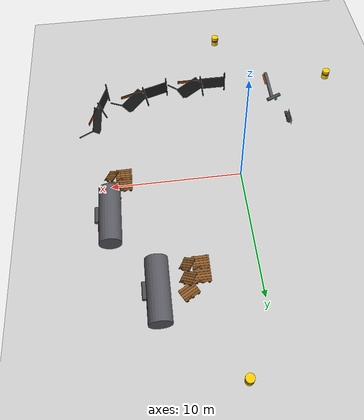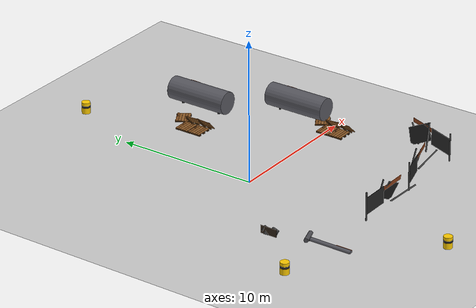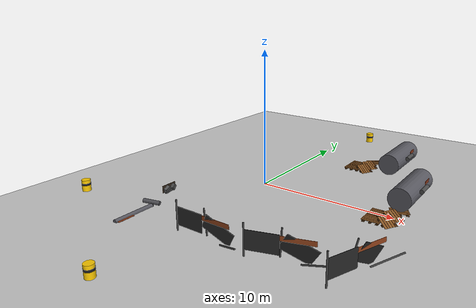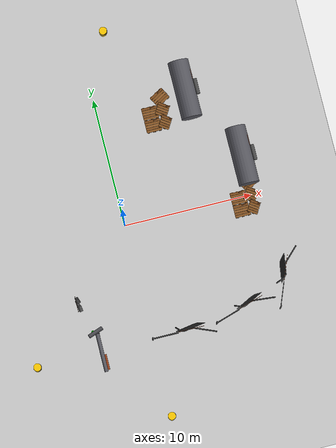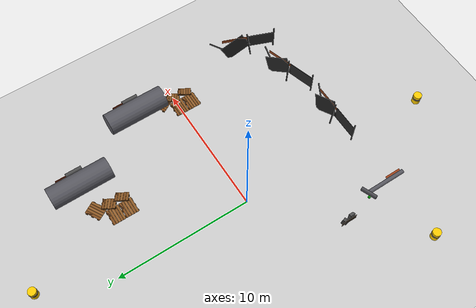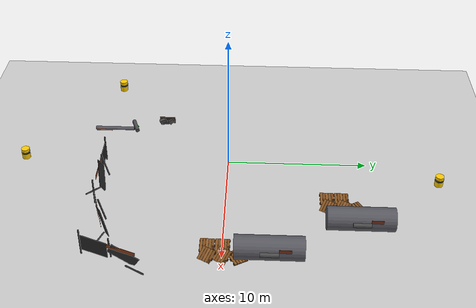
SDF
<sdf version="1.7">
 <world name="bosque_ruinas_final">
  <physics type="ode">
   <max_step_size>0.002</max_step_size>
   <real_time_factor>1.0</real_time_factor>
   <real_time_update_rate>500</real_time_update_rate>
  </physics>
  <plugin filename="gz-sim-physics-system" name="gz::sim::systems::Physics"/>
  <plugin filename="gz-sim-user-commands-system" name="gz::sim::systems::UserCommands"/>
  <plugin filename="gz-sim-scene-broadcaster-system" name="gz::sim::systems::SceneBroadcaster"/>
  <plugin filename="gz-sim-sensors-system" name="gz::sim::systems::Sensors">
   <render_engine>ogre2</render_engine>
  </plugin>
  <light name="sun" type="directional">
   <cast_shadows>false</cast_shadows>
   <pose>0 0 30 0 0 0</pose>
   <diffuse>0.9 0.9 0.9 1.0</diffuse>
   <specular>0.2 0.2 0.2 1.0</specular>
   <direction>0.5 -0.5 -1.0</direction>
  </light>
  <include><uri>model://ground</uri><name>suelo</name></include>
  <include><uri>model://hazardous_barrel</uri><name>barril_1</name><pose>2 15 0 0 0 0</pose></include>
  <include><uri>model://hazardous_barrel</uri><name>barril_2</name><pose>0 -15 0 0 0 0</pose></include>
  <include><uri>model://hazardous_barrel</uri><name>barril_3</name><pose>-9 -9 0.4 0 0 0</pose></include>
  <include><uri>model://palets</uri><name>palet</name><pose>5 9 0 0 0 0.5236</pose></include>
  <include><uri>model://palets</uri><name>palet1</name><pose>4 7 0 0 0 0</pose></include>
  <include><uri>model://palets</uri><name>palet2</name><pose>4 8 0 0 0 0</pose></include>
  <include><uri>model://palets</uri><name>palet3</name><pose>5 7 0 0 0.5236 -0.5236</pose></include>
  <include><uri>model://palets</uri><name>palet4</name><pose>5 8 0 0 0.4363 -0.5236</pose></include>
  <include><uri>model://palets</uri><name>palet5</name><pose>10 1 0 0 0 0.5236</pose></include>
  <include><uri>model://palets</uri><name>palet6</name><pose>9 -1 0 0 0 0</pose></include>
  <include><uri>model://palets</uri><name>palet7</name><pose>9 0 0 0 0 0</pose></include>
  <include><uri>model://palets</uri><name>palet8</name><pose>10 -1 0 0 0.5236 -0.5236</pose></include>
  <include><uri>model://palets</uri><name>palet9</name><pose>10 0 0 0 0.4363 -0.5236</pose></include>
  <include><uri>model://chemical_tank</uri><name>tanque_quimico</name><pose>7 9 0 0 0 -1.5708</pose></include>
  <include><uri>model://chemical_tank</uri><name>tanque_quimico2</name><pose>10 3 0 0 0 -1.5708</pose></include>
  <include>
   <uri>model://broken_fence_section</uri>
   <name>broken_fence_section0</name>
   <pose>0 -9 0 0 0 0</pose>
  </include>
  <include>
   <uri>model://broken_fence_section</uri>
   <name>broken_fence_section1</name>
   <pose>5 -9 0 0 0 0.3</pose>
  </include>
  <include>
   <uri>model://broken_fence_section</uri>
   <name>broken_fence_section2</name>
   <pose>10 -9 0 0 0 1.2</pose>
  </include>
  <include><uri>model://broken_pipe</uri><name>broken_pipe0</name><pose>-5 -9 0 1.5708 0 1.5708</pose></include>
  <include><uri>model://debris_pile</uri><name>debris_pile0</name><pose>-5 -5 0 1.5708 0 1.5708</pose></include>
 </world>
</sdf>

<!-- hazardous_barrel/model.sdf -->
<sdf version="1.7">
  <model name="hazardous_barrel">
    <link name="link">
      <inertial>
        <mass>20.0</mass>
        <inertia>
          <ixx>0.7</ixx>
          <iyy>0.7</iyy>
          <izz>0.5</izz>
        </inertia>
      </inertial>
      <collision name="collision">
        <pose>0 0 0.4 0 0 0</pose>
        <geometry>
          <cylinder>
            <radius>0.3</radius>
            <length>0.8</length>
          </cylinder>
        </geometry>
      </collision>
      <!-- Cuerpo Amarillo -->
      <visual name="visual_body">
        <pose>0 0 0.4 0 0 0</pose>
        <geometry>
          <cylinder>
            <radius>0.3</radius>
            <length>0.8</length>
          </cylinder>
        </geometry>
        <material>
          <ambient>1 0.8 0 1</ambient>
          <diffuse>1 0.8 0 1</diffuse>
          <specular>0.5 0.5 0.5 1</specular>
        </material>
      </visual>
      <!-- Franja Negra -->
      <visual name="visual_stripe">
        <pose>0 0 0.5 0 0 0</pose>
        <geometry>
          <cylinder>
            <radius>0.31</radius>
            <length>0.15</length>
          </cylinder>
        </geometry>
        <material>
          <ambient>0.1 0.1 0.1 1</ambient>
          <diffuse>0.1 0.1 0.1 1</diffuse>
        </material>
      </visual>
    </link>
  </model>
</sdf>

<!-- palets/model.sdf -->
<sdf version="1.7">

  <model name="industrial_pallet">

    <static>true</static>

    <link name="pallet_link">

      <!-- INERTIA -->
      <inertial>
        <mass>35.0</mass>

        <inertia>
          <ixx>2.0</ixx>
          <iyy>2.0</iyy>
          <izz>2.0</izz>
        </inertia>
      </inertial>

      <!-- COLLISION -->
      <collision name="collision">

        <pose>0 0 0.075 0 0 0</pose>

        <geometry>
          <box>
            <size>1.2 1.0 0.15</size>
          </box>
        </geometry>

      </collision>

      <!-- TOP WOOD PLANKS -->

      <visual name="top_plank_1">
        <pose>0 -0.38 0.13 0 0 0</pose>

        <geometry>
          <box>
            <size>1.2 0.18 0.03</size>
          </box>
        </geometry>

        <material>
          <ambient>0.45 0.28 0.12 1</ambient>
          <diffuse>0.55 0.35 0.15 1</diffuse>
        </material>
      </visual>

      <visual name="top_plank_2">
        <pose>0 -0.19 0.13 0 0 0</pose>

        <geometry>
          <box>
            <size>1.2 0.18 0.03</size>
          </box>
        </geometry>

        <material>
          <ambient>0.42 0.25 0.10 1</ambient>
          <diffuse>0.52 0.32 0.13 1</diffuse>
        </material>
      </visual>

      <visual name="top_plank_3">
        <pose>0 0.0 0.13 0 0 0</pose>

        <geometry>
          <box>
            <size>1.2 0.18 0.03</size>
          </box>
        </geometry>

        <material>
          <ambient>0.48 0.30 0.15 1</ambient>
          <diffuse>0.58 0.38 0.18 1</diffuse>
        </material>
      </visual>

      <visual name="top_plank_4">
        <pose>0 0.19 0.13 0 0 0</pose>

        <geometry>
          <box>
            <size>1.2 0.18 0.03</size>
          </box>
        </geometry>

        <material>
          <ambient>0.44 0.27 0.11 1</ambient>
          <diffuse>0.54 0.34 0.14 1</diffuse>
        </material>
      </visual>

      <visual name="top_plank_5">
        <pose>0 0.38 0.13 0 0 0</pose>

        <geometry>
          <box>
            <size>1.2 0.18 0.03</size>
          </box>
        </geometry>

        <material>
          <ambient>0.40 0.24 0.10 1</ambient>
          <diffuse>0.50 0.30 0.12 1</diffuse>
        </material>
      </visual>

      <!-- MIDDLE SUPPORTS -->

      <visual name="middle_support_1">

        <pose>-0.45 0 0.075 0 0 0</pose>

        <geometry>
          <box>
            <size>0.12 1.0 0.08</size>
          </box>
        </geometry>

        <material>
          <ambient>0.30 0.18 0.08 1</ambient>
          <diffuse>0.38 0.24 0.10 1</diffuse>
        </material>

      </visual>

      <visual name="middle_support_2">

        <pose>0 0 0.075 0 0 0</pose>

        <geometry>
          <box>
            <size>0.12 1.0 0.08</size>
          </box>
        </geometry>

        <material>
          <ambient>0.32 0.19 0.09 1</ambient>
          <diffuse>0.40 0.26 0.12 1</diffuse>
        </material>

      </visual>

      <visual name="middle_support_3">

        <pose>0.45 0 0.075 0 0 0</pose>

        <geometry>
          <box>
            <size>0.12 1.0 0.08</size>
          </box>
        </geometry>

        <material>
          <ambient>0.28 0.16 0.07 1</ambient>
          <diffuse>0.35 0.22 0.09 1</diffuse>
        </material>

      </visual>

      <!-- BOTTOM PLANKS -->

      <visual name="bottom_plank_1">

        <pose>-0.45 0 0.02 0 0 0</pose>

        <geometry>
          <box>
            <size>0.18 1.0 0.03</size>
          </box>
        </geometry>

        <material>
          <ambient>0.35 0.22 0.10 1</ambient>
          <diffuse>0.45 0.28 0.12 1</diffuse>
        </material>

      </visual>

      <visual name="bottom_plank_2">

        <pose>0 0 0.02 0 0 0</pose>

        <geometry>
          <box>
            <size>0.18 1.0 0.03</size>
          </box>
        </geometry>

        <material>
          <ambient>0.33 0.20 0.09 1</ambient>
          <diffuse>0.43 0.27 0.11 1</diffuse>
        </material>

      </visual>

      <visual name="bottom_plank_3">

        <pose>0.45 0 0.02 0 0 0</pose>

        <geometry>
          <box>
            <size>0.18 1.0 0.03</size>
          </box>
        </geometry>

        <material>
          <ambient>0.36 0.23 0.11 1</ambient>
          <diffuse>0.46 0.29 0.13 1</diffuse>
        </material>

      </visual>

      <!-- DAMAGE / BROKEN BOARD -->

      <visual name="broken_piece">

        <pose>0.25 0.42 0.145 0 0 0.25</pose>

        <geometry>
          <box>
            <size>0.35 0.08 0.02</size>
          </box>
        </geometry>

        <material>
          <ambient>0.25 0.15 0.05 1</ambient>
          <diffuse>0.35 0.20 0.08 1</diffuse>
        </material>

      </visual>

    </link>

  </model>

</sdf>

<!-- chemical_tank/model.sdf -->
<sdf version="1.7">

  <model name="chemical_tank">

    <static>true</static>

    <link name="tank_link">

      <!-- INERTIA -->
      <inertial>
        <mass>800.0</mass>
        <inertia>
          <ixx>200.0</ixx>
          <iyy>800.0</iyy>
          <izz>800.0</izz>
        </inertia>
      </inertial>

      <!-- MAIN CYLINDER BODY -->
      <collision name="collision">

        <pose>0 0 1.0 0 1.57 0</pose>

        <geometry>
          <cylinder>
            <radius>0.8</radius>
            <length>4.5</length>
          </cylinder>
        </geometry>

      </collision>

      <visual name="tank_body">

        <pose>0 0 1.0 0 1.57 0</pose>

        <geometry>
          <cylinder>
            <radius>0.8</radius>
            <length>4.5</length>
          </cylinder>
        </geometry>

        <material>
          <ambient>0.2 0.2 0.2 1</ambient>
          <diffuse>0.35 0.35 0.38 1</diffuse>
          <specular>0.1 0.1 0.1 1</specular>
        </material>

      </visual>

      <!-- SUPPORT LEGS -->

      <visual name="leg_1">
        <pose>1.5 0 0.3 0 0 0</pose>

        <geometry>
          <cylinder>
            <radius>0.08</radius>
            <length>0.6</length>
          </cylinder>
        </geometry>

        <material>
          <ambient>0.15 0.15 0.15 1</ambient>
          <diffuse>0.2 0.2 0.2 1</diffuse>
        </material>
      </visual>

      <visual name="leg_2">
        <pose>-1.5 0 0.3 0 0 0</pose>

        <geometry>
          <cylinder>
            <radius>0.08</radius>
            <length>0.6</length>
          </cylinder>
        </geometry>

        <material>
          <ambient>0.15 0.15 0.15 1</ambient>
          <diffuse>0.2 0.2 0.2 1</diffuse>
        </material>
      </visual>

      <!-- PIPE CONNECTION -->
      <visual name="pipe">

        <pose>0 0.9 1.2 0 1.57 0</pose>

        <geometry>
          <cylinder>
            <radius>0.15</radius>
            <length>1.2</length>
          </cylinder>
        </geometry>

        <material>
          <ambient>0.25 0.25 0.25 1</ambient>
          <diffuse>0.3 0.3 0.3 1</diffuse>
        </material>

      </visual>

      <!-- RUST PATCH -->
      <visual name="rust_patch">

        <pose>-1.0 0.75 1.2 0 0 0</pose>

        <geometry>
          <box>
            <size>0.8 0.02 0.6</size>
          </box>
        </geometry>

        <material>
          <ambient>0.4 0.15 0.05 1</ambient>
          <diffuse>0.5 0.2 0.1 1</diffuse>
        </material>

      </visual>

    </link>

  </model>

</sdf>

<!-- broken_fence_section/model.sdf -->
<sdf version="1.7">

  <model name="broken_fence_section">

    <static>true</static>

    <link name="fence_link">

      <!-- POST 1 -->
      <visual name="post_1">

        <pose>0 0 1.0 0 0 0</pose>

        <geometry>
          <cylinder>
            <radius>0.05</radius>
            <length>2.0</length>
          </cylinder>
        </geometry>

        <material>
          <ambient>0.2 0.2 0.2 1</ambient>
          <diffuse>0.25 0.25 0.25 1</diffuse>
        </material>

      </visual>

      <!-- POST 2 (inclinado) -->
      <visual name="post_2">

        <pose>2.0 0.3 1.0 0.2 0.1 0</pose>

        <geometry>
          <cylinder>
            <radius>0.05</radius>
            <length>2.0</length>
          </cylinder>
        </geometry>

        <material>
          <ambient>0.2 0.2 0.2 1</ambient>
          <diffuse>0.25 0.25 0.25 1</diffuse>
        </material>

      </visual>

      <!-- POST 3 (caído) -->
      <visual name="post_3">

        <pose>4.0 -0.2 0.3 1.2 0.4 1.0</pose>

        <geometry>
          <cylinder>
            <radius>0.05</radius>
            <length>2.0</length>
          </cylinder>
        </geometry>

        <material>
          <ambient>0.2 0.2 0.2 1</ambient>
          <diffuse>0.25 0.25 0.25 1</diffuse>
        </material>

      </visual>

      <!-- FENCE PANEL (intact start) -->
      <visual name="panel_1">

        <pose>1.0 0 1.0 0 0 0</pose>

        <geometry>
          <box>
            <size>2.0 0.02 1.2</size>
          </box>
        </geometry>

        <material>
          <ambient>0.1 0.1 0.1 1</ambient>
          <diffuse>0.15 0.15 0.15 1</diffuse>
        </material>

      </visual>

      <!-- BROKEN PANEL (bent) -->
      <visual name="panel_2_bent">

        <pose>3.0 0.2 0.8 0.3 0.5 0.2</pose>

        <geometry>
          <box>
            <size>2.0 0.02 1.2</size>
          </box>
        </geometry>

        <material>
          <ambient>0.1 0.1 0.1 1</ambient>
          <diffuse>0.15 0.15 0.15 1</diffuse>
        </material>

      </visual>

      <!-- RUST PATCH -->
      <visual name="rust">

        <pose>2.5 0 1.4 0 0 0</pose>

        <geometry>
          <box>
            <size>3.0 0.01 0.3</size>
          </box>
        </geometry>

        <material>
          <ambient>0.45 0.2 0.08 1</ambient>
          <diffuse>0.55 0.25 0.1 1</diffuse>
        </material>

      </visual>

    </link>

  </model>

</sdf>

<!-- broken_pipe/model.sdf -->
<sdf version="1.7">

  <model name="broken_pipe">

    <static>true</static>

    <link name="pipe_link">

      <!-- MAIN PIPE -->
      <collision name="collision_main">
        <pose>0 0 1.0 0 1.57 0</pose>

        <geometry>
          <cylinder>
            <radius>0.15</radius>
            <length>3.0</length>
          </cylinder>
        </geometry>
      </collision>

      <visual name="pipe_main">

        <pose>0 0 1.0 0 1.57 0</pose>

        <geometry>
          <cylinder>
            <radius>0.15</radius>
            <length>3.0</length>
          </cylinder>
        </geometry>

        <material>
          <ambient>0.25 0.25 0.27 1</ambient>
          <diffuse>0.35 0.35 0.38 1</diffuse>
          <specular>0.05 0.05 0.05 1</specular>
        </material>

      </visual>

      <!-- BROKEN SEGMENT -->
      <visual name="pipe_broken_segment">

        <pose>1.6 0.2 0.9 0.3 0.2 0.8</pose>

        <geometry>
          <cylinder>
            <radius>0.15</radius>
            <length>1.2</length>
          </cylinder>
        </geometry>

        <material>
          <ambient>0.2 0.2 0.22 1</ambient>
          <diffuse>0.3 0.3 0.32 1</diffuse>
        </material>

      </visual>

      <!-- OPEN END CAP -->
      <visual name="pipe_open_end">

        <pose>1.5 0 1.0 0 1.57 0</pose>

        <geometry>
          <cylinder>
            <radius>0.16</radius>
            <length>0.05</length>
          </cylinder>
        </geometry>

        <material>
          <ambient>0.15 0.15 0.15 1</ambient>
          <diffuse>0.2 0.2 0.2 1</diffuse>
        </material>

      </visual>

      <!-- RUST PATCH -->
      <visual name="rust_patch">

        <pose>-0.8 0.0 1.1 0 0 0</pose>

        <geometry>
          <box>
            <size>1.2 0.02 0.4</size>
          </box>
        </geometry>

        <material>
          <ambient>0.5 0.2 0.05 1</ambient>
          <diffuse>0.6 0.25 0.1 1</diffuse>
        </material>

      </visual>

      <!-- LEAK EFFECT (visual marker) -->
      <visual name="leak_marker">

        <pose>1.7 0 0.7 0 0 0</pose>

        <geometry>
          <sphere>
            <radius>0.1</radius>
          </sphere>
        </geometry>

        <material>
          <ambient>0.0 0.3 0.0 1</ambient>
          <diffuse>0.0 0.6 0.0 1</diffuse>
        </material>

      </visual>

    </link>

  </model>

</sdf>

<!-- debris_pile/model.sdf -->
<sdf version="1.7">

  <model name="debris_pile">

    <static>true</static>

    <link name="debris_link">

      <!-- MAIN DEBRIS BLOCKS -->

      <visual name="chunk_1">
        <pose>0 0 0.1 0.2 0.1 0.3</pose>
        <geometry>
          <box>
            <size>0.6 0.4 0.2</size>
          </box>
        </geometry>
        <material>
          <ambient>0.25 0.25 0.25 1</ambient>
          <diffuse>0.3 0.3 0.3 1</diffuse>
        </material>
      </visual>

      <visual name="chunk_2">
        <pose>0.3 0.2 0.15 0.1 0.3 0.6</pose>
        <geometry>
          <box>
            <size>0.4 0.3 0.25</size>
          </box>
        </geometry>
        <material>
          <ambient>0.2 0.2 0.2 1</ambient>
          <diffuse>0.28 0.28 0.28 1</diffuse>
        </material>
      </visual>

      <visual name="chunk_3">
        <pose>-0.25 -0.15 0.12 0.4 0.2 0.1</pose>
        <geometry>
          <box>
            <size>0.5 0.35 0.18</size>
          </box>
        </geometry>
        <material>
          <ambient>0.22 0.22 0.22 1</ambient>
          <diffuse>0.3 0.3 0.3 1</diffuse>
        </material>
      </visual>

      <visual name="chunk_4">
        <pose>0.1 -0.3 0.08 0.1 0.5 0.2</pose>
        <geometry>
          <box>
            <size>0.3 0.25 0.12</size>
          </box>
        </geometry>
        <material>
          <ambient>0.18 0.18 0.18 1</ambient>
          <diffuse>0.25 0.25 0.25 1</diffuse>
        </material>
      </visual>

      <visual name="chunk_5">
        <pose>-0.35 0.25 0.2 0.3 0.1 0.4</pose>
        <geometry>
          <box>
            <size>0.45 0.3 0.22</size>
          </box>
        </geometry>
        <material>
          <ambient>0.24 0.24 0.24 1</ambient>
          <diffuse>0.32 0.32 0.32 1</diffuse>
        </material>
      </visual>

      <!-- SMALL RUBBLE PIECES -->

      <visual name="small_1">
        <pose>0.2 0.1 0.05 0 0 0</pose>
        <geometry>
          <box>
            <size>0.15 0.1 0.08</size>
          </box>
        </geometry>
        <material>
          <ambient>0.2 0.2 0.2 1</ambient>
          <diffuse>0.26 0.26 0.26 1</diffuse>
        </material>
      </visual>

      <visual name="small_2">
        <pose>-0.2 -0.2 0.06 0 0 0.3</pose>
        <geometry>
          <box>
            <size>0.12 0.12 0.06</size>
          </box>
        </geometry>
        <material>
          <ambient>0.18 0.18 0.18 1</ambient>
          <diffuse>0.24 0.24 0.24 1</diffuse>
        </material>
      </visual>

      <visual name="small_3">
        <pose>0.0 -0.25 0.04 0.2 0.1 0.5</pose>
        <geometry>
          <box>
            <size>0.1 0.1 0.05</size>
          </box>
        </geometry>
        <material>
          <ambient>0.22 0.22 0.22 1</ambient>
          <diffuse>0.28 0.28 0.28 1</diffuse>
        </material>
      </visual>

      <!-- GROUND DIRT BASE -->
      <visual name="base_dirt">

        <pose>0 0 0.01 0 0 0</pose>

        <geometry>
          <box>
            <size>1.2 1.0 0.02</size>
          </box>
        </geometry>

        <material>
          <ambient>0.15 0.12 0.08 1</ambient>
          <diffuse>0.2 0.15 0.1 1</diffuse>
        </material>

      </visual>

    </link>

  </model>

</sdf>
